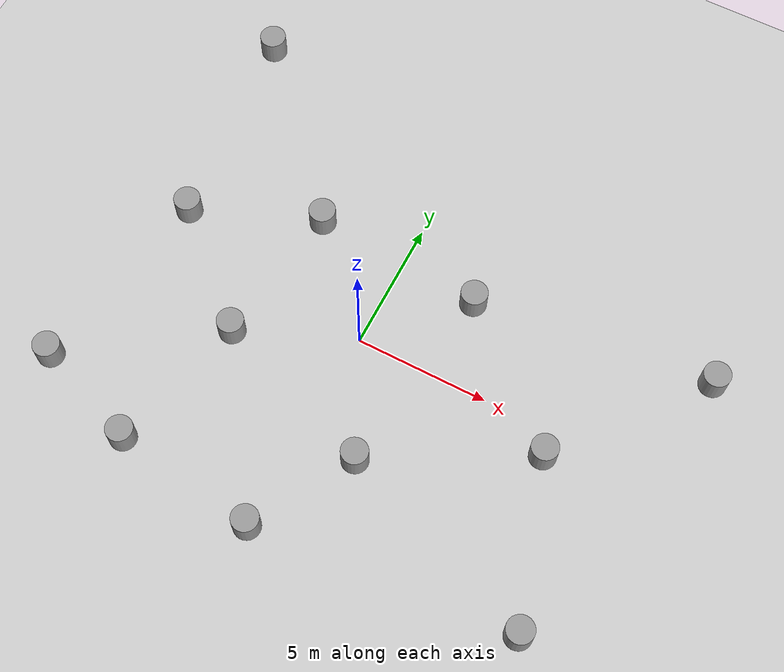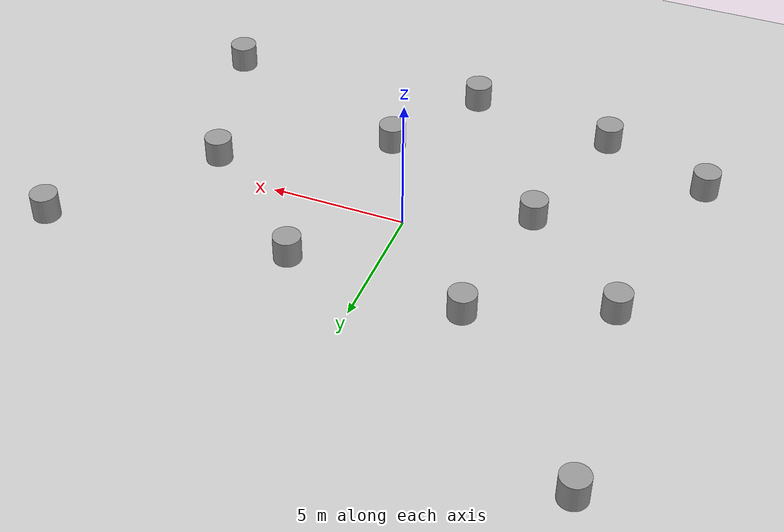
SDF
<sdf version="1.7">
 <world name="default">
  <light name="sun" type="directional">
   <pose>0 0 10 0 -0 0</pose>
   <diffuse>0.8 0.8 0.8 1</diffuse>
   <specular>0.2 0.2 0.2 1</specular>
   <attenuation>
    <range>1000</range>
    <constant>0.9</constant>
    <linear>0.01</linear>
    <quadratic>0.001</quadratic>
   </attenuation>
   <direction>-0.5 0.1 -0.9</direction>
   <spot><inner_angle>0</inner_angle><outer_angle>0</outer_angle><falloff>0</falloff></spot>
  </light>
  <model name="ground_plane">
   <static>1</static>
   <link name="link">
    <collision name="collision">
     <geometry><plane><normal>0 0 1</normal><size>100 100</size></plane></geometry>
     <surface><friction><ode><mu>100</mu><mu2>50</mu2></ode></friction></surface>
    </collision>
    <visual name="visual">
     <cast_shadows>0</cast_shadows>
     <geometry><plane><normal>0 0 1</normal><size>100 100</size></plane></geometry>
     <material>
      <script><uri>file://media/materials/scripts/gazebo.material</uri><name>Gazebo/Grey</name></script>
     </material>
    </visual>
   </link>
  </model>
  <gravity>0 0 -9.8</gravity>
  <magnetic_field>6e-06 2.3e-05 -4.2e-05</magnetic_field>
  <atmosphere type="adiabatic"/>
  <physics type="ode">
   <max_step_size>0.001</max_step_size>
   <real_time_factor>1</real_time_factor>
   <real_time_update_rate>1000</real_time_update_rate>
  </physics>
  <scene><ambient>0.4 0.4 0.4 1</ambient><background>0.7 0.7 0.7 1</background><shadows>1</shadows></scene>
  <spherical_coordinates>
   <surface_model>EARTH_WGS84</surface_model>
   <latitude_deg>0</latitude_deg>
   <longitude_deg>0</longitude_deg>
   <elevation>0</elevation>
   <heading_deg>0</heading_deg>
  </spherical_coordinates>
  <model name="unit_cylinder">
   <pose>-5.58818 -7.09508 0.499998 3e-06 -3e-06 0</pose>
   <link name="link">
    <inertial>
     <mass>1</mass>
     <inertia><ixx>0.145833</ixx><ixy>0</ixy><ixz>0</ixz><iyy>0.145833</iyy><iyz>0</iyz><izz>0.125</izz></inertia>
    </inertial>
    <collision name="collision">
     <geometry><cylinder><radius>0.5</radius><length>1</length></cylinder></geometry>
    </collision>
    <visual name="visual">
     <geometry><cylinder><radius>0.5</radius><length>1</length></cylinder></geometry>
     <material>
      <script><name>Gazebo/Grey</name><uri>file://media/materials/scripts/gazebo.material</uri></script>
     </material>
    </visual>
   </link>
  </model>
  <model name="unit_cylinder_0">
   <pose>-0.16196 -7.85222 0.499992 -3e-06 3e-06 0</pose>
   <link name="link">
    <inertial>
     <mass>1</mass>
     <inertia><ixx>0.145833</ixx><ixy>0</ixy><ixz>0</ixz><iyy>0.145833</iyy><iyz>0</iyz><izz>0.125</izz></inertia>
    </inertial>
    <collision name="collision">
     <geometry><cylinder><radius>0.5</radius><length>1</length></cylinder></geometry>
    </collision>
    <visual name="visual">
     <geometry><cylinder><radius>0.5</radius><length>1</length></cylinder></geometry>
     <material>
      <script><name>Gazebo/Grey</name><uri>file://media/materials/scripts/gazebo.material</uri></script>
     </material>
    </visual>
   </link>
  </model>
  <model name="unit_cylinder_1">
   <pose>-4.26012 -1.79758 0.499998 3e-06 -3e-06 0</pose>
   <link name="link">
    <inertial>
     <mass>1</mass>
     <inertia><ixx>0.145833</ixx><ixy>0</ixy><ixz>0</ixz><iyy>0.145833</iyy><iyz>0</iyz><izz>0.125</izz></inertia>
    </inertial>
    <collision name="collision">
     <geometry><cylinder><radius>0.5</radius><length>1</length></cylinder></geometry>
    </collision>
    <visual name="visual">
     <geometry><cylinder><radius>0.5</radius><length>1</length></cylinder></geometry>
     <material>
      <script><name>Gazebo/Grey</name><uri>file://media/materials/scripts/gazebo.material</uri></script>
     </material>
    </visual>
   </link>
  </model>
  <model name="unit_cylinder_2">
   <pose>-3.49638 3.66363 0.499992 -3e-06 4e-06 0</pose>
   <link name="link">
    <inertial>
     <mass>1</mass>
     <inertia><ixx>0.145833</ixx><ixy>0</ixy><ixz>0</ixz><iyy>0.145833</iyy><iyz>0</iyz><izz>0.125</izz></inertia>
    </inertial>
    <collision name="collision">
     <geometry><cylinder><radius>0.5</radius><length>1</length></cylinder></geometry>
    </collision>
    <visual name="visual">
     <geometry><cylinder><radius>0.5</radius><length>1</length></cylinder></geometry>
     <material>
      <script><name>Gazebo/Grey</name><uri>file://media/materials/scripts/gazebo.material</uri></script>
     </material>
    </visual>
   </link>
  </model>
  <model name="unit_cylinder_3">
   <pose>-8.19892 1.76874 0.499992 -3e-06 4e-06 0</pose>
   <link name="link">
    <inertial>
     <mass>1</mass>
     <inertia><ixx>0.145833</ixx><ixy>0</ixy><ixz>0</ixz><iyy>0.145833</iyy><iyz>0</iyz><izz>0.125</izz></inertia>
    </inertial>
    <collision name="collision">
     <geometry><cylinder><radius>0.5</radius><length>1</length></cylinder></geometry>
    </collision>
    <visual name="visual">
     <geometry><cylinder><radius>0.5</radius><length>1</length></cylinder></geometry>
     <material>
      <script><name>Gazebo/Grey</name><uri>file://media/materials/scripts/gazebo.material</uri></script>
     </material>
    </visual>
   </link>
  </model>
  <model name="unit_cylinder_4">
   <pose>2.99337 3.21975 0.499992 -3e-06 4e-06 0</pose>
   <link name="link">
    <inertial>
     <mass>1</mass>
     <inertia><ixx>0.145833</ixx><ixy>0</ixy><ixz>0</ixz><iyy>0.145833</iyy><iyz>0</iyz><izz>0.125</izz></inertia>
    </inertial>
    <collision name="collision">
     <geometry><cylinder><radius>0.5</radius><length>1</length></cylinder></geometry>
    </collision>
    <visual name="visual">
     <geometry><cylinder><radius>0.5</radius><length>1</length></cylinder></geometry>
     <material>
      <script><name>Gazebo/Grey</name><uri>file://media/materials/scripts/gazebo.material</uri></script>
     </material>
    </visual>
   </link>
  </model>
  <model name="unit_cylinder_5">
   <pose>1.98239 -4.07754 0.499998 3e-06 -4e-06 0</pose>
   <link name="link">
    <inertial>
     <mass>1</mass>
     <inertia><ixx>0.145833</ixx><ixy>0</ixy><ixz>0</ixz><iyy>0.145833</iyy><iyz>0</iyz><izz>0.125</izz></inertia>
    </inertial>
    <collision name="collision">
     <geometry><cylinder><radius>0.5</radius><length>1</length></cylinder></geometry>
    </collision>
    <visual name="visual">
     <geometry><cylinder><radius>0.5</radius><length>1</length></cylinder></geometry>
     <material>
      <script><name>Gazebo/Grey</name><uri>file://media/materials/scripts/gazebo.material</uri></script>
     </material>
    </visual>
   </link>
  </model>
  <model name="unit_cylinder_6">
   <pose>-9.57322 -5.60843 0.499992 -3e-06 -4e-06 -0</pose>
   <link name="link">
    <inertial>
     <mass>1</mass>
     <inertia><ixx>0.145833</ixx><ixy>0</ixy><ixz>0</ixz><iyy>0.145833</iyy><iyz>0</iyz><izz>0.125</izz></inertia>
    </inertial>
    <collision name="collision">
     <geometry><cylinder><radius>0.5</radius><length>1</length></cylinder></geometry>
    </collision>
    <visual name="visual">
     <geometry><cylinder><radius>0.5</radius><length>1</length></cylinder></geometry>
     <material>
      <script><name>Gazebo/Grey</name><uri>file://media/materials/scripts/gazebo.material</uri></script>
     </material>
    </visual>
   </link>
  </model>
  <model name="unit_cylinder_7">
   <pose>9.5718 -6.94995 0.499997 3e-06 3e-06 0</pose>
   <link name="link">
    <inertial>
     <mass>1</mass>
     <inertia><ixx>0.145833</ixx><ixy>0</ixy><ixz>0</ixz><iyy>0.145833</iyy><iyz>0</iyz><izz>0.125</izz></inertia>
    </inertial>
    <collision name="collision">
     <geometry><cylinder><radius>0.5</radius><length>1</length></cylinder></geometry>
    </collision>
    <visual name="visual">
     <geometry><cylinder><radius>0.5</radius><length>1</length></cylinder></geometry>
     <material>
      <script><name>Gazebo/Grey</name><uri>file://media/materials/scripts/gazebo.material</uri></script>
     </material>
    </visual>
   </link>
  </model>
  <model name="unit_cylinder_8">
   <pose>11.9207 4.30245 0.499997 3e-06 4e-06 -0</pose>
   <link name="link">
    <inertial>
     <mass>1</mass>
     <inertia><ixx>0.145833</ixx><ixy>0</ixy><ixz>0</ixz><iyy>0.145833</iyy><iyz>0</iyz><izz>0.125</izz></inertia>
    </inertial>
    <collision name="collision">
     <geometry><cylinder><radius>0.5</radius><length>1</length></cylinder></geometry>
    </collision>
    <visual name="visual">
     <geometry><cylinder><radius>0.5</radius><length>1</length></cylinder></geometry>
     <material>
      <script><name>Gazebo/Grey</name><uri>file://media/materials/scripts/gazebo.material</uri></script>
     </material>
    </visual>
   </link>
  </model>
  <model name="unit_cylinder_9">
   <pose>7.69356 -0.934077 0.499993 -3e-06 -4e-06 -0</pose>
   <link name="link">
    <inertial>
     <mass>1</mass>
     <inertia><ixx>0.145833</ixx><ixy>0</ixy><ixz>0</ixz><iyy>0.145833</iyy><iyz>0</iyz><izz>0.125</izz></inertia>
    </inertial>
    <collision name="collision">
     <geometry><cylinder><radius>0.5</radius><length>1</length></cylinder></geometry>
    </collision>
    <visual name="visual">
     <geometry><cylinder><radius>0.5</radius><length>1</length></cylinder></geometry>
     <material>
      <script><name>Gazebo/Grey</name><uri>file://media/materials/scripts/gazebo.material</uri></script>
     </material>
    </visual>
   </link>
  </model>
  <model name="unit_cylinder_10">
   <pose>-8.97513 9.65115 0.499997 3e-06 4e-06 -0</pose>
   <link name="link">
    <inertial>
     <mass>1</mass>
     <inertia><ixx>0.145833</ixx><ixy>0</ixy><ixz>0</ixz><iyy>0.145833</iyy><iyz>0</iyz><izz>0.125</izz></inertia>
    </inertial>
    <collision name="collision">
     <geometry><cylinder><radius>0.5</radius><length>1</length></cylinder></geometry>
    </collision>
    <visual name="visual">
     <geometry><cylinder><radius>0.5</radius><length>1</length></cylinder></geometry>
     <material>
      <script><name>Gazebo/Grey</name><uri>file://media/materials/scripts/gazebo.material</uri></script>
     </material>
    </visual>
   </link>
  </model>
 </world>
</sdf>
